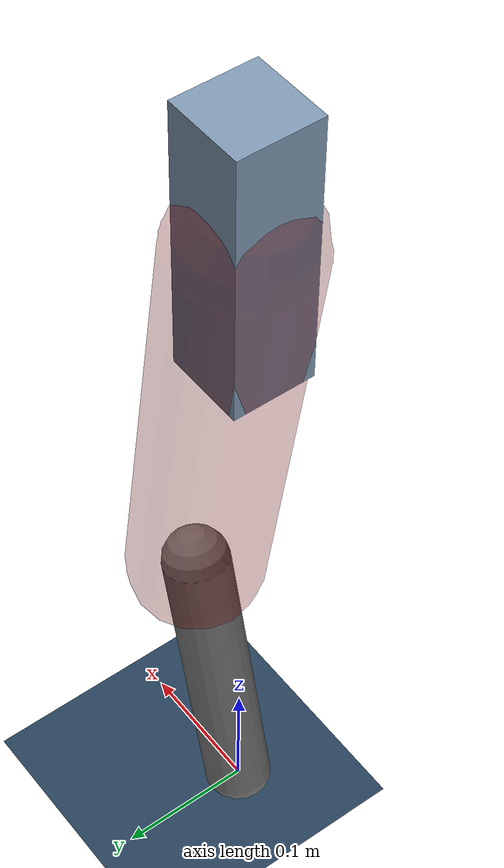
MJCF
<mujoco model="Hopper2D">
	<compiler inertiafromgeom="true" angle="radian" />
	<option timestep="0.001" integrator="implicit" cone="elliptic" solver="Newton" tolerance="1e-10" />

	<default>
		<geom contype="1" conaffinity="1" condim="3" friction="2 0.005 0.0001" solref="0.005 1" />
		<joint limited="true" damping="0.1" />
	</default>

	<asset>
		<texture name="skybox" type="skybox" builtin="gradient" rgb1=".4 .6 .8" rgb2="0 0 0" width="800" height="800" />
		<texture name="grid" type="2d" builtin="checker" rgb1=".1 .2 .3" rgb2=".2 .3 .4" width="300" height="300" mark="edge" markrgb=".2 .3 .4" />
		<material name="ground" texture="grid" texrepeat="1 1" texuniform="true" reflectance="0.1" />
		<material name="leg" rgba="0.5 0.6 0.7 1" />
	</asset>

	<worldbody>

		<geom name="floor" type="plane" size="5 5 0.25" material="ground" />

		<light directional="false" diffuse="0.8 0.8 0.8" specular="0.3 0.3 0.3" pos="0 0 2" dir="0 0 -1" />
		<light mode="targetbodycom" target="base" directional="false" diffuse="0.8 0.8 0.8" specular="0.3 0.3 0.3" pos="0 0 2" dir="0 0 -1" />

		<camera name="fixed" pos="0 -2 1" xyaxes="1 0 0 0 0 1" />
		<camera name="tracking" mode="trackcom" pos="0 -3 1" />

		<body name="root" pos="0 0 0.5550700743884225">
			<joint name="slide_x" type="slide" axis="1 0 0" range="-100 100" />
			<joint name="slide_z" type="slide" axis="0 0 1" range="0 10" />

			<body name="base" pos="0 0 0">
				<geom name="torso" type="box" size="0.03 0.03 0.1" mass="2.3659999999999997" material="leg" />

				<body name="link1" pos="0 0 0" euler="0 1.420924073199189 0">
					<joint type="hinge" axis="0 -1 0" pos="0 0 0" name="hinge1" limited="true" range="-3.14 3.14" stiffness="0" damping="0.1" />
					<geom name="thigh" type="capsule" fromto="0 0 0 0.3452481551795848 0 0" size="0.05" rgba="0.5 0 0 0.3" mass="1.1132948345028375" />

					<body name="link2" pos="0.3452481551795848 0 0" euler="0 0.38658295309069374 0">
						<joint type="hinge" axis="0 -1 0" pos="0 0 0" name="hinge2" limited="true" range="-3.14 3.14" stiffness="0" damping="0.1" />
						<geom name="shank" type="capsule" fromto="0 0 0 0.2198219192088377 0 0" size="0.025" mass="0.41753972728795397" />

					</body>
				</body>
			</body>
		</body>
	</worldbody>

	<actuator>
		<motor name="torque1" joint="hinge1" ctrlrange="-114.1615936516387 114.1615936516387" ctrllimited="true" gear="1" />
		<motor name="torque2" joint="hinge2" ctrlrange="-105.01182950410646 105.01182950410646" ctrllimited="true" gear="1" />
	</actuator>
</mujoco>
